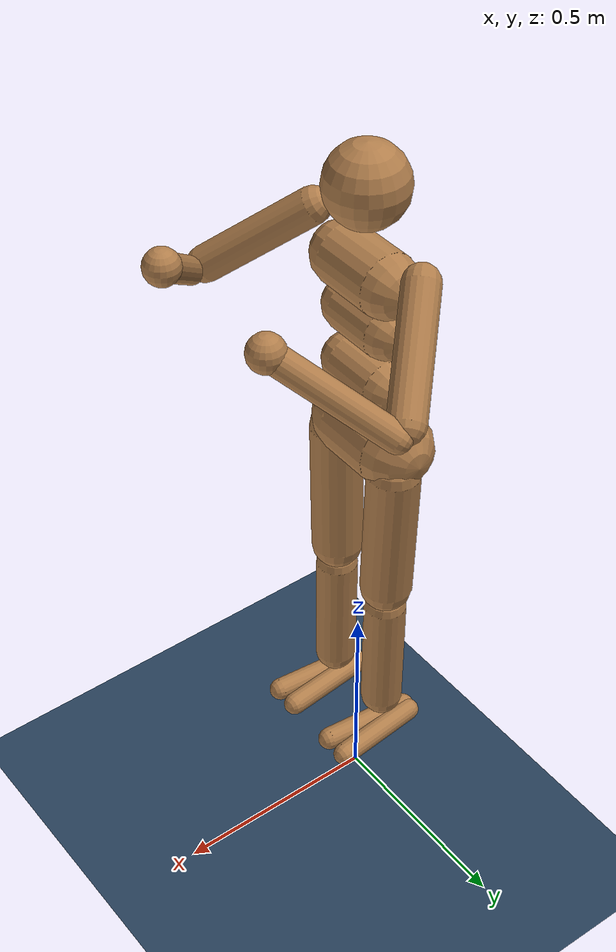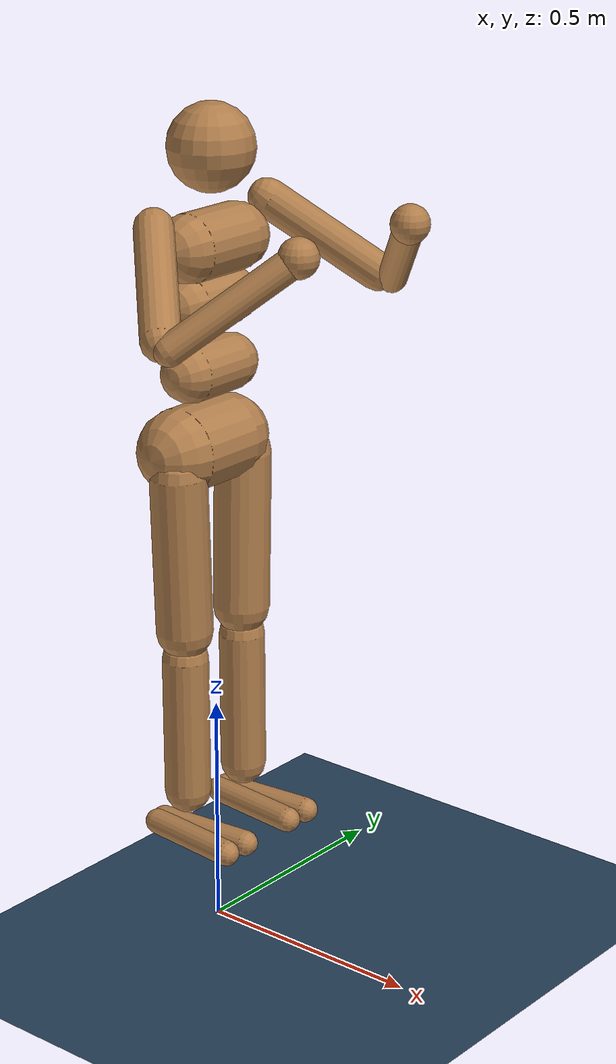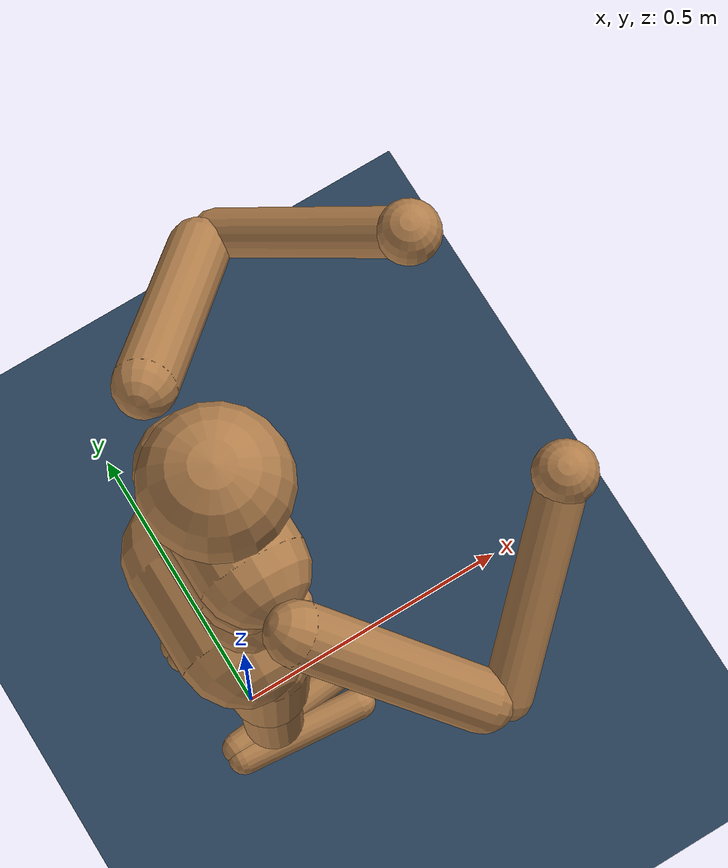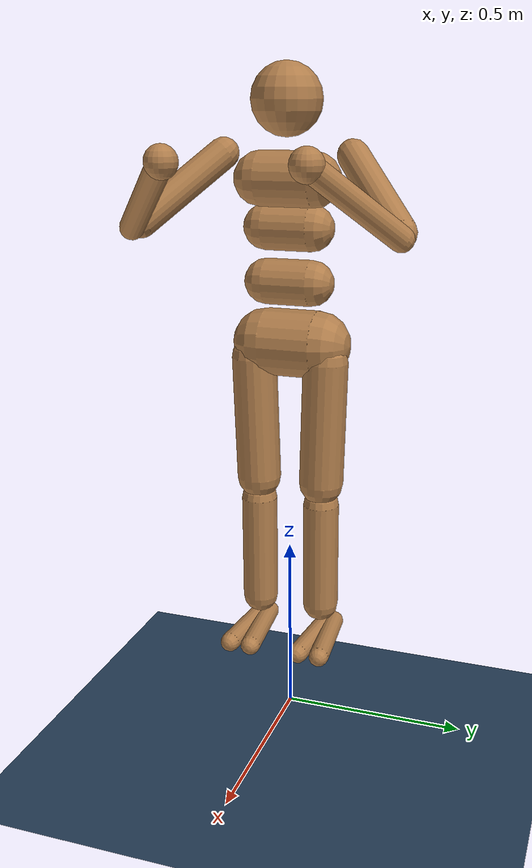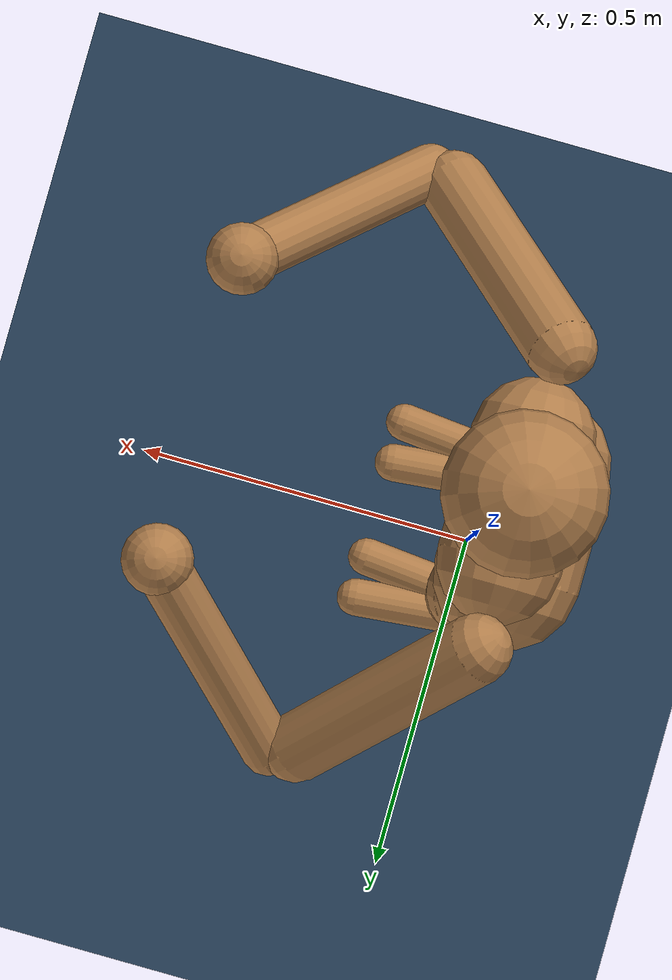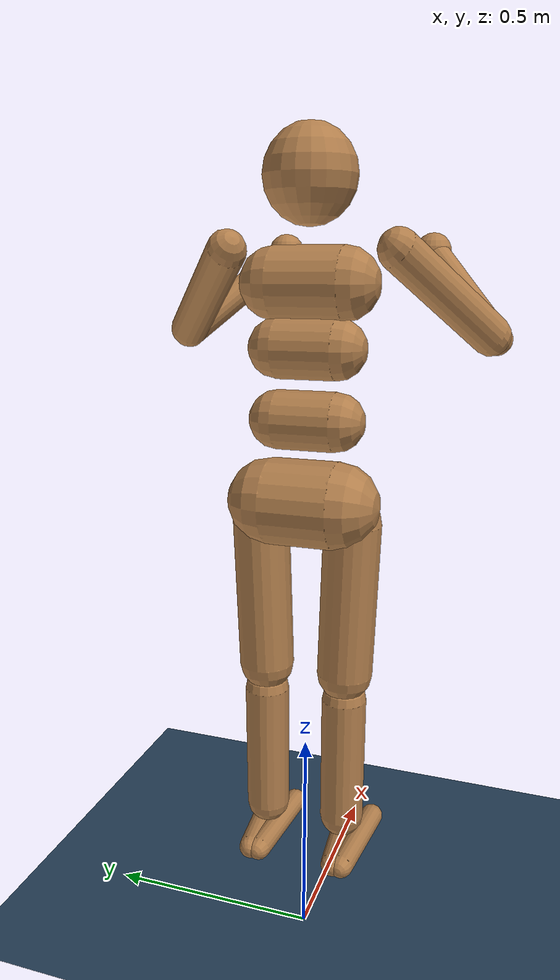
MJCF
<mujoco model="humanoid">
  <include file="./common/skybox.xml"/>
  <include file="./common/visual.xml"/>
  <include file="./common/materials.xml"/>

  <statistic extent="2" center="0 0 1"/>

  <option timestep=".005"/>

  <default>
    <motor ctrlrange="-1 1"  ctrllimited="true"/>
    <default class="torque-sensor">
      <site type="box" size="0.01 0.01 0.1" rgba="1 0 0 0"/>
    </default>
    <default class="body">
      <geom  type="capsule" condim="1" friction=".7" solimp=".99 .99 .003" solref=".015 1" material="self"/>
      <joint type="hinge" damping=".2" stiffness="1" armature=".01" limited="true" solimplimit="0 .99 .01"/>
      <default class="big_joint">
        <joint damping="5" stiffness="10"/>
        <default class="big_stiff_joint">
          <joint stiffness="20"/>
        </default>
      </default>
    </default>
  </default>

  <worldbody>
    <geom name="floor" type="plane" conaffinity="1" size="100 100 .2" material="grid"/>
    <body name="torso" pos="0 0 1.5" childclass="body">
      <light name="top" pos="0 0 2" mode="trackcom"/>
      <camera name="back" pos="-3 0 1" xyaxes="0 -1 0 1 0 2" mode="trackcom"/>
      <camera name="side" pos="0 -3 1" xyaxes="1 0 0 0 1 2" mode="trackcom"/>
      <freejoint name="root"/>
      <geom name="torso" fromto="0 -.07 0 0 .07 0" size="0.07"/>
      <body name="head" pos="0 0 .19">
        <geom name="head" type="sphere" size=".09"/>
      </body>
      <site name="torso_site" size="0.05" rgba="1 0 0 1"/>
      <geom name="upper_waist" fromto="-.01 -.06 -.12 -.01 .06 -.12" size="0.06"/>
      <body name="lower_waist" pos="-.01 0 -0.260" quat="1.000 0 -0.002 0">
        <geom name="lower_waist" fromto="0 -.06 0 0 .06 0" size="0.06"/>
        <joint name="abdomen_z" pos="0 0 0.065" axis="0 0 1" range="-45 45" class="big_stiff_joint"/>
        <joint name="abdomen_y" pos="0 0 0.065" axis="0 1 0" range="-75 30" class="big_joint"/>
        <body name="pelvis" pos="0 0 -0.165" quat="1.000 0 -0.002 0">
          <joint name="abdomen_x" pos="0 0 0.1" axis="1 0 0" range="-35 35" class="big_joint"/>
          <geom name="butt" fromto="-.02 -.07 0 -.02 .07 0" size="0.09"/>
          <body name="right_thigh" pos="0 -0.1 -0.04">
            <site name="right_hip" class="torque-sensor"/>
            <joint name="right_hip_x" axis="1 0 0" range="-25 5"   class="big_joint"/>
            <joint name="right_hip_z" axis="0 0 1" range="-60 35"  class="big_joint"/>
            <joint name="right_hip_y" axis="0 1 0" range="-110 20" class="big_stiff_joint"/>
            <geom name="right_thigh" fromto="0 0 0 0 0.01 -.34" size="0.06"/>
            <body name="right_shin" pos="0 0.01 -0.403">
              <site name="right_knee" class="torque-sensor"/>
              <joint name="right_knee" pos="0 0 .02" axis="0 -1 0" range="-160 2"/>
              <geom name="right_shin" fromto="0 0 0 0 0 -.3"  size="0.049"/>
              <site name="right_shin_touch" type="box" pos="0 0 -0.16" size="0.06 0.06 0.17" rgba="0 0 1 0"/>
              <body name="right_foot" pos="0 0 -.39">
                <site name="right_ankle" class="torque-sensor"/>
                <joint name="right_ankle_y" pos="0 0 0.08" axis="0 1 0"   range="-50 50" stiffness="6"/>
                <joint name="right_ankle_x" pos="0 0 0.04" axis="1 0 0.5" range="-50 50" stiffness="3"/>
                <geom name="right_right_foot" fromto="-.07 -0.02 0 0.14 -0.04 0" size="0.027"/>
                <geom name="left_right_foot" fromto="-.07 0 0 0.14  0.02 0" size="0.027"/>
                <site name="right_foot_touch" type="box" pos="0.02 -0.01 0" size="0.15 0.06 0.04" rgba="0 0 1 0"/>
              </body>
            </body>
          </body>
          <body name="left_thigh" pos="0 0.1 -0.04">
            <site name="left_hip" class="torque-sensor"/>
            <joint name="left_hip_x" axis="-1 0 0" range="-25 5"  class="big_joint"/>
            <joint name="left_hip_z" axis="0 0 -1" range="-60 35" class="big_joint"/>
            <joint name="left_hip_y" axis="0 1 0" range="-120 20" class="big_stiff_joint"/>
            <geom name="left_thigh" fromto="0 0 0 0 -0.01 -.34" size="0.06"/>
            <body name="left_shin" pos="0 -0.01 -0.403">
              <site name="left_knee" class="torque-sensor"/>
              <joint name="left_knee" pos="0 0 .02" axis="0 -1 0" range="-160 2"/>
              <geom name="left_shin" fromto="0 0 0 0 0 -.3"  size="0.049"/>
              <site name="left_shin_touch" type="box" pos="0 0 -0.16" size="0.06 0.06 0.17" rgba="0 0 1 0"/>
              <body name="left_foot" pos="0 0 -.39">
                <site name="left_ankle" class="torque-sensor"/>
                <joint name="left_ankle_y" pos="0 0 0.08" axis="0 1 0"   range="-50 50" stiffness="6"/>
                <joint name="left_ankle_x" pos="0 0 0.04" axis="1 0 0.5" range="-50 50" stiffness="3"/>
                <geom name="left_left_foot" fromto="-.07 0.02 0 0.14 0.04 0" size="0.027"/>
                <geom name="right_left_foot" fromto="-.07 0 0 0.14  -0.02 0" size="0.027"/>
                <site name="left_foot_touch" type="box" pos="0.02 0.01 0" size="0.15 0.06 0.04" rgba="0 0 1 0"/>
              </body>
            </body>
          </body>
        </body>
      </body>
      <body name="right_upper_arm" pos="0 -0.17 0.06">
        <joint name="right_shoulder1" axis="2 1 1"  range="-85 60"/>
        <joint name="right_shoulder2" axis="0 -1 1" range="-85 60"/>
        <geom name="right_upper_arm" fromto="0 0 0 .16 -.16 -.16" size="0.04 0.16"/>
        <body name="right_lower_arm" pos=".18 -.18 -.18">
          <joint name="right_elbow" axis="0 -1 1" range="-90 50" stiffness="0"/>
          <geom name="right_larm" fromto="0.01 0.01 0.01 .17 .17 .17" size="0.031"/>
          <body name="right_hand" pos=".18 .18 .18">
            <geom name="right_hand" type="sphere" size="0.04"/>
          </body>
        </body>
      </body>
      <body name="left_upper_arm" pos="0 0.17 0.06">
        <joint name="left_shoulder1" axis="2 -1 1" range="-60 85"/>
        <joint name="left_shoulder2" axis="0 1 1" range="-60 85"/>
        <geom name="left_upper_arm" fromto="0 0 0 .16 .16 -.16" size="0.04 0.16"/>
        <body name="left_lower_arm" pos=".18 .18 -.18">
          <joint name="left_elbow" axis="0 -1 -1" range="-90 50" stiffness="0"/>
          <geom name="left_larm" fromto="0.01 -0.01 0.01 .17 -.17 .17" size="0.031"/>
          <body name="left_hand" pos=".18 -.18 .18">
            <geom name="left_hand" type="sphere" size="0.04"/>
          </body>
        </body>
      </body>
    </body>
  </worldbody>

  <actuator>
    <motor name="abdomen_y"       gear="40"  joint="abdomen_y"/>
    <motor name="abdomen_z"       gear="40"  joint="abdomen_z"/>
    <motor name="abdomen_x"       gear="40"  joint="abdomen_x"/>
    <motor name="right_hip_x"     gear="40"  joint="right_hip_x"/>
    <motor name="right_hip_z"     gear="40"  joint="right_hip_z"/>
    <motor name="right_hip_y"     gear="120" joint="right_hip_y"/>
    <motor name="right_knee"      gear="80"  joint="right_knee"/>
    <motor name="right_ankle_x"   gear="20"  joint="right_ankle_x"/>
    <motor name="right_ankle_y"   gear="20"  joint="right_ankle_y"/>
    <motor name="left_hip_x"      gear="40"  joint="left_hip_x"/>
    <motor name="left_hip_z"      gear="40"  joint="left_hip_z"/>
    <motor name="left_hip_y"      gear="120" joint="left_hip_y"/>
    <motor name="left_knee"       gear="80"  joint="left_knee"/>
    <motor name="left_ankle_x"    gear="20"  joint="left_ankle_x"/>
    <motor name="left_ankle_y"    gear="20"  joint="left_ankle_y"/>
    <motor name="right_shoulder1" gear="20"  joint="right_shoulder1"/>
    <motor name="right_shoulder2" gear="20"  joint="right_shoulder2"/>
    <motor name="right_elbow"     gear="40"  joint="right_elbow"/>
    <motor name="left_shoulder1"  gear="20"  joint="left_shoulder1"/>
    <motor name="left_shoulder2"  gear="20"  joint="left_shoulder2"/>
    <motor name="left_elbow"      gear="40"  joint="left_elbow"/>
  </actuator>

  <sensor>
    <accelerometer name="torso_accel" site="torso_site"/>
    <velocimeter name="torso_vel"     site="torso_site"/>
    <gyro name="torso_gyro"           site="torso_site"/>
    <torque name="left_ankle_torque"  site="left_ankle"/>
    <torque name="right_ankle_torque" site="right_ankle"/>
    <torque name="left_knee_torque"   site="left_knee"/>
    <torque name="right_knee_torque"  site="right_knee"/>
    <torque name="left_hip_torque"    site="left_hip"/>
    <torque name="right_hip_torque"   site="right_hip"/>
    <touch name="left_foot_touch"     site="left_foot_touch"/>
    <touch name="right_foot_touch"    site="right_foot_touch"/>
    <touch name="left_shin_touch"     site="left_shin_touch"/>
    <touch name="right_shin_touch"    site="right_shin_touch"/>
  </sensor>

</mujoco>

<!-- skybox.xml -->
<mujoco>
  <asset>
      <texture name="skybox" type="skybox" builtin="gradient" rgb1=".4 .6 .8" rgb2="0 0 0"
               width="800" height="800" mark="random" markrgb="1 1 1"/>
  </asset>
</mujoco>

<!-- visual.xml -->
<mujoco>
  <visual>
    <headlight ambient=".4 .4 .4" diffuse=".8 .8 .8" specular="0.1 0.1 0.1"/>
    <map znear=".01"/>
    <quality shadowsize="2048"/>
  </visual>
</mujoco>

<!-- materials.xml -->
<!--
Common textures, colors and materials to be used throughout this suite. Some
materials such as xxx_highlight are activated on occurence of certain events,
for example receiving a positive reward.
-->
<mujoco>
  <asset>
    <texture name="grid" type="2d" builtin="checker" rgb1=".1 .2 .3" rgb2=".2 .3 .4" width="300" height="300" mark="edge" markrgb=".2 .3 .4"/>
    <material name="grid" texture="grid" texrepeat="1 1" texuniform="true" reflectance=".2"/>
    <material name="self" rgba=".7 .5 .3 1"/>
    <material name="self_default" rgba=".7 .5 .3 1"/>
    <material name="self_highlight" rgba="0 .5 .3 1"/>
    <material name="effector" rgba=".7 .4 .2 1"/>
    <material name="effector_default" rgba=".7 .4 .2 1"/>
    <material name="effector_highlight" rgba="0 .5 .3 1"/>
    <material name="decoration" rgba=".3 .5 .7 1"/>
    <material name="eye" rgba="0 .2 1 1"/>
    <material name="target" rgba=".6 .3 .3 1"/>
    <material name="target_default" rgba=".6 .3 .3 1"/>
    <material name="target_highlight" rgba=".6 .3 .3 .4"/>
  </asset>
</mujoco>
